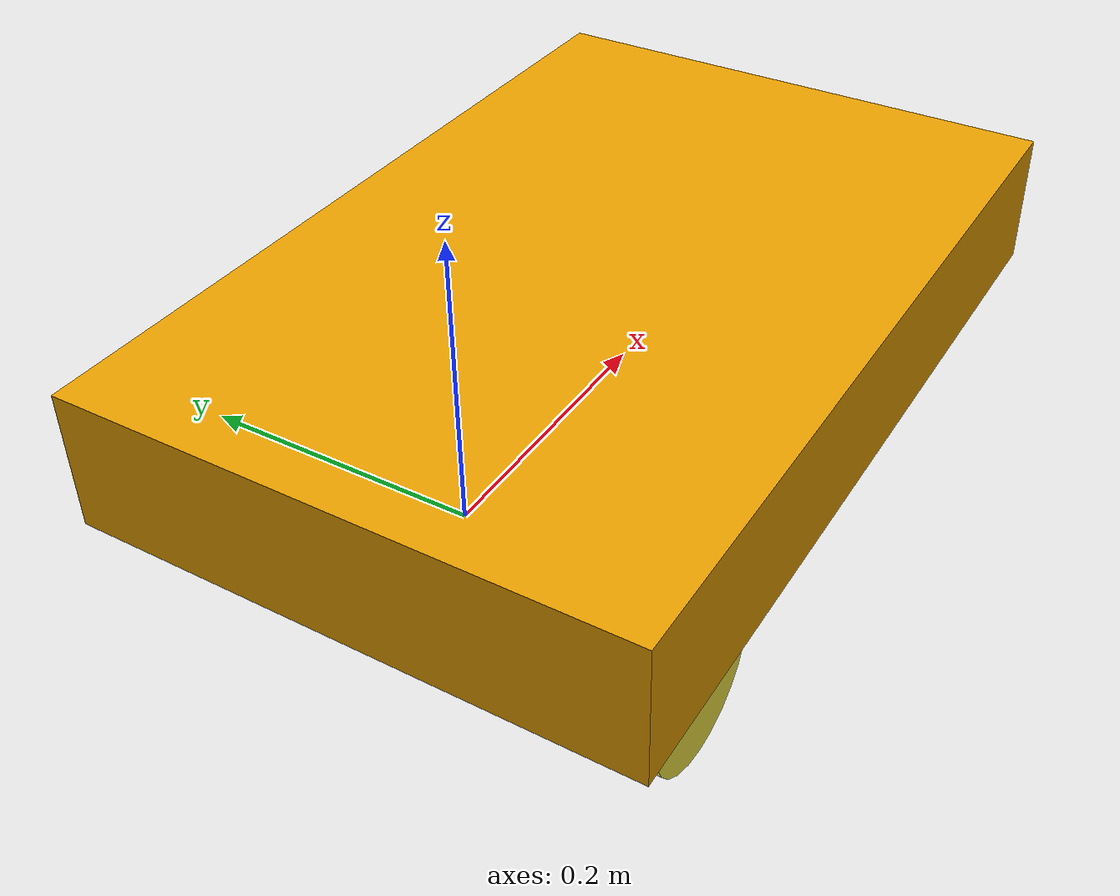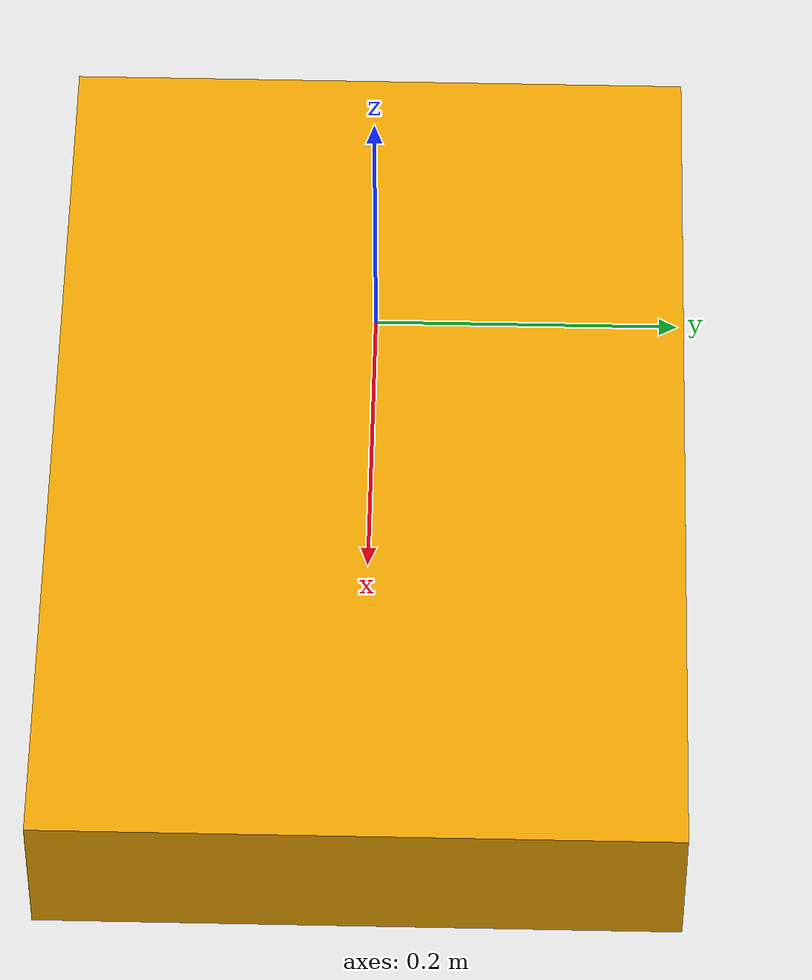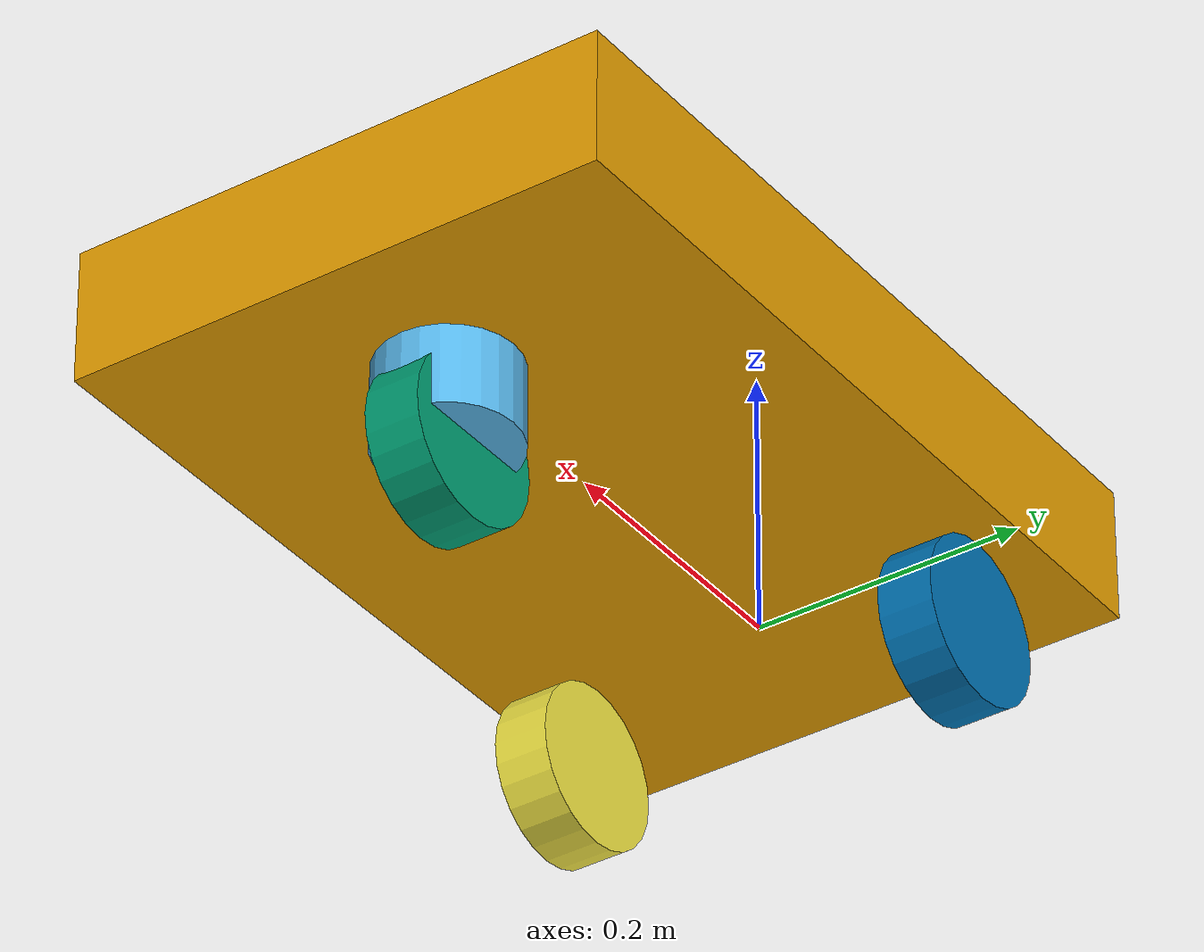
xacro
<?xml version="1.0"?>
<robot xmlns:xacro="http://www.ros.org/wiki/xacro" name="truber_p1">

	<xacro:property name="width" value="0.40" />
	<xacro:property name="bodylen" value="0.60" />
	<xacro:property name="height" value="0.1" />

	<xacro:property name="wheel_radius" value="0.06"/>
	<xacro:property name="wheel_width" value="0.04"/>

	<xacro:property name="wheel_base" value="0.35"/>
	<xacro:property name="rear_wheel_seperation" value = "0.3"/>

	<xacro:property name="max_steer_angle" value="0.6"/>
	<xacro:property name="max_steer_vel" value="1.0"/>

	<link name="base_link">
		<visual>
		    <geometry>
		        <box size="${bodylen} ${width} ${height}"/>
		    </geometry>
		    <origin xyz="0.175 0 ${height/2}" rpy="0 0 0"/>
		</visual>
		<collision>
		    <geometry>
				<box size="${bodylen} ${width} ${height}"/>
			</geometry>
			<origin xyz="0.175 0 ${height/2}" rpy="0 0 0"/>
		</collision>
	</link>

	<joint name="front_steer_joint" type="revolute">
		<parent link="base_link"/>
		<child link="front_wheel_steer"/>
		<axis xyz="0 0 1"/>
		<limit effort="1000" lower="${-max_steer_angle}" upper="${max_steer_angle}" velocity="${max_steer_vel}"/>
		<origin rpy="0 0 0" xyz="${wheel_base} 0 0"/>
	</joint>

	<link name="front_wheel_steer">
		<visual>
			<geometry>
				<cylinder length="${wheel_radius}" radius="0.05"/>
			</geometry>
			<origin rpy="0 0 0" xyz="0 0 ${-wheel_radius/2}"/>
		</visual>
	</link>

	<joint name="front_wheel_joint" type="continuous">
		<parent link="front_wheel_steer"/>
		<child link="front_wheel"/>
		<axis xyz="0 1 0"/>
		<origin rpy="0 0 0" xyz="0 0 ${-wheel_radius}"/>
	</joint>

	<link name="front_wheel">
		<visual>
			<geometry>
				<cylinder length="${wheel_width}" radius="${wheel_radius}"/>
			</geometry>
			<origin xyz="0 0 0" rpy="1.57075 1.57075 0"/>
		</visual>
	</link>

	<joint name="rear_left_joint" type="continuous">
		<parent link="base_link"/>
		<child link="rear_left_wheel"/>
		<axis xyz="0 1 0"/>
		<origin rpy="0 0 0" xyz="0 ${-0.5*rear_wheel_seperation} ${-wheel_radius}"/>
	</joint>

	<link name="rear_left_wheel">
		<visual>
			<geometry>
				<cylinder length="${wheel_width}" radius="${wheel_radius}"/>
			</geometry>
			<origin xyz="0 0 0" rpy="1.57075 1.57075 0"/>
		</visual>
	</link>

	<joint name="rear_right_joint" type="continuous">
		<parent link="base_link"/>
		<child link="rear_right_wheel"/>
		<axis xyz="0 1 0"/>
		<origin rpy="0 0 0" xyz="0 ${0.5*rear_wheel_seperation} ${-wheel_radius}"/>
	</joint>

	<link name="rear_right_wheel">
		<visual>
			<geometry>
				<cylinder length="${wheel_width}" radius="${wheel_radius}"/>
			</geometry>
			<origin xyz="0 0 0" rpy="1.57075 1.57075 0"/>
		</visual>
	</link>

</robot>
